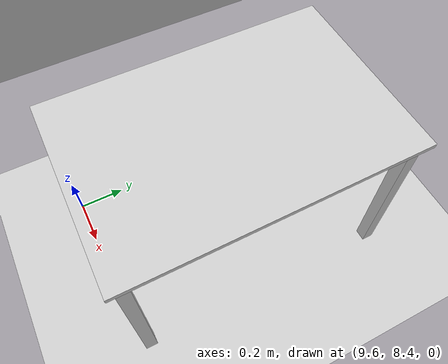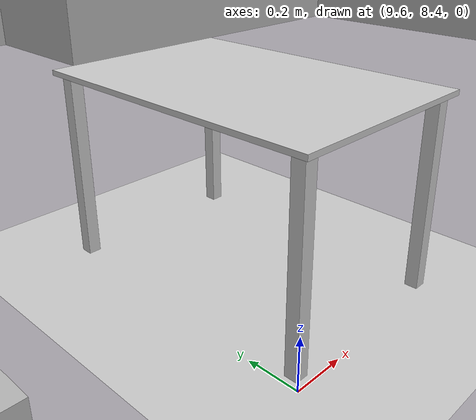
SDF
<?xml version="1.0"?>
<sdf version="1.6">
  <world name="wonderland">
    <light name="sun" type="directional">
      <direction>0.5 0.1 -0.9</direction>
      <pose>0 0 10 0 0 0</pose>
      <specular>0.2 0.2 0.2 1</specular>
      <cast_shadows>true</cast_shadows>
      <diffuse>0.8 0.8 0.8 1</diffuse>
      <attenuation>
        <range>1000</range>
        <quadratic>0.001</quadratic>
        <constant>0.9</constant>
        <linear>0.01</linear>
      </attenuation>
    </light>
    <include>
      <pose>0 0 0 0 0 0</pose>
      <name>walls</name>
      <uri>model://wonderland/walls</uri>
    </include>
    <include>
      <pose>0 0 0 0 0 0</pose>
      <name>floor</name>
      <uri>model://ground_plane</uri>
    </include>
    <include>
      <pose>10 9 0 0 0 1.57</pose>
      <name>table</name>
      <uri>model://table_120x80x76</uri>
    </include>
    <physics type="ode">
      <real_time_update_rate>333.0</real_time_update_rate>
      <max_step_size>0.003</max_step_size>
      <ode>
        <constraints>
          <cfm>0.0001</cfm>
        </constraints>
        <solver>
          <type>quick</type>
          <iters>100</iters>
        </solver>
      </ode>
    </physics>
  </world>
</sdf>

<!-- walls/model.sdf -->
<sdf version="1.6">
  <model name="wonderland/walls">
    <link name="1_link">
      <collision name="1_col">
        <geometry>
          <mesh>
            <uri>model://wonderland/walls/shape/heightmap.stl</uri>
          </mesh>
        </geometry>
      </collision>
      <visual name="1_vis">
        <geometry>
          <mesh>
            <uri>model://wonderland/walls/shape/heightmap.stl</uri>
          </mesh>
        </geometry>
      </visual>
      <pose>0 0 0 0 0 0</pose>
    </link>
    <static>true</static>
  </model>
</sdf>

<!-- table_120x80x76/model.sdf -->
<sdf version="1.6">
  <model name="table_120x80x76" type="table">
    <link name="1_link">
      <collision name="1_col">
        <geometry>
          <box>
            <size>1.2 0.8 0.02</size>
          </box>
        </geometry>
      </collision>
      <visual name="1_vis">
        <geometry>
          <box>
            <size>1.2 0.8 0.02</size>
          </box>
        </geometry>
        <material>
          <ambient>0.8 0.8 0.8 1</ambient>
        </material>
      </visual>
      <pose>0 0 0.75 0 0 0</pose>
    </link>
    <link name="2_link">
      <collision name="2_col">
        <geometry>
          <box>
            <size>0.05 0.05 0.74</size>
          </box>
        </geometry>
      </collision>
      <visual name="2_vis">
        <geometry>
          <box>
            <size>0.05 0.05 0.74</size>
          </box>
        </geometry>
        <material>
          <ambient>0.8 0.8 0.8 1</ambient>
        </material>
      </visual>
      <pose>-0.55 -0.35 0.37 0 0 0</pose>
    </link>
    <link name="3_link">
      <collision name="3_col">
        <geometry>
          <box>
            <size>0.05 0.05 0.74</size>
          </box>
        </geometry>
      </collision>
      <visual name="3_vis">
        <geometry>
          <box>
            <size>0.05 0.05 0.74</size>
          </box>
        </geometry>
        <material>
          <ambient>0.8 0.8 0.8 1</ambient>
        </material>
      </visual>
      <pose>0.55 -0.35 0.37 0 0 0</pose>
    </link>
    <link name="4_link">
      <collision name="4_col">
        <geometry>
          <box>
            <size>0.05 0.05 0.74</size>
          </box>
        </geometry>
      </collision>
      <visual name="4_vis">
        <geometry>
          <box>
            <size>0.05 0.05 0.74</size>
          </box>
        </geometry>
        <material>
          <ambient>0.8 0.8 0.8 1</ambient>
        </material>
      </visual>
      <pose>-0.55 0.35 0.37 0 0 0</pose>
    </link>
    <link name="5_link">
      <collision name="5_col">
        <geometry>
          <box>
            <size>0.05 0.05 0.74</size>
          </box>
        </geometry>
      </collision>
      <visual name="5_vis">
        <geometry>
          <box>
            <size>0.05 0.05 0.74</size>
          </box>
        </geometry>
        <material>
          <ambient>0.8 0.8 0.8 1</ambient>
        </material>
      </visual>
      <pose>0.55 0.35 0.37 0 0 0</pose>
    </link>
    <link name="in_front_of">
      <virtual_volume name="in_front_of_vv">
        <geometry>
          <box>
            <size>0.6 0.6 0.01</size>
          </box>
        </geometry>
        <pose>0.9 0.0 0.005 0 0 0</pose>
      </virtual_volume>
    </link>
    <link name="on_top_of">
      <virtual_volume name="on_top_of_vv">
        <geometry>
          <box>
            <size>1.2 0.8 0.42</size>
          </box>
        </geometry>
        <pose>0.0 0.0 0.99 0 0 0</pose>
      </virtual_volume>
    </link>
    <link name="under">
      <virtual_volume name="under_vv">
        <geometry>
          <box>
            <size>1.08 0.68 0.49</size>
          </box>
        </geometry>
        <pose>0.0 0.0 0.255 0 0 0</pose>
      </virtual_volume>
    </link>
    <static>true</static>
  </model>
</sdf>
